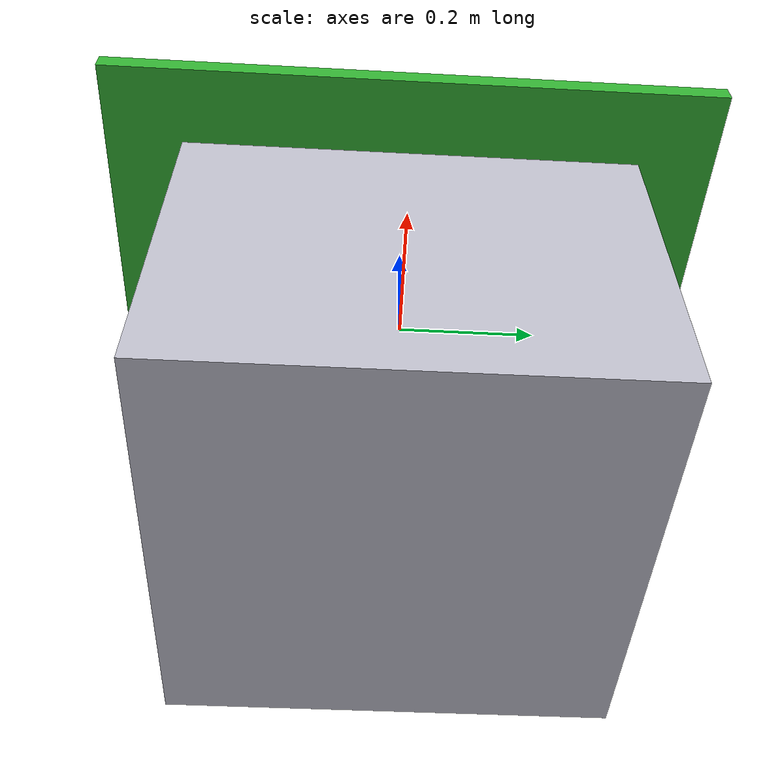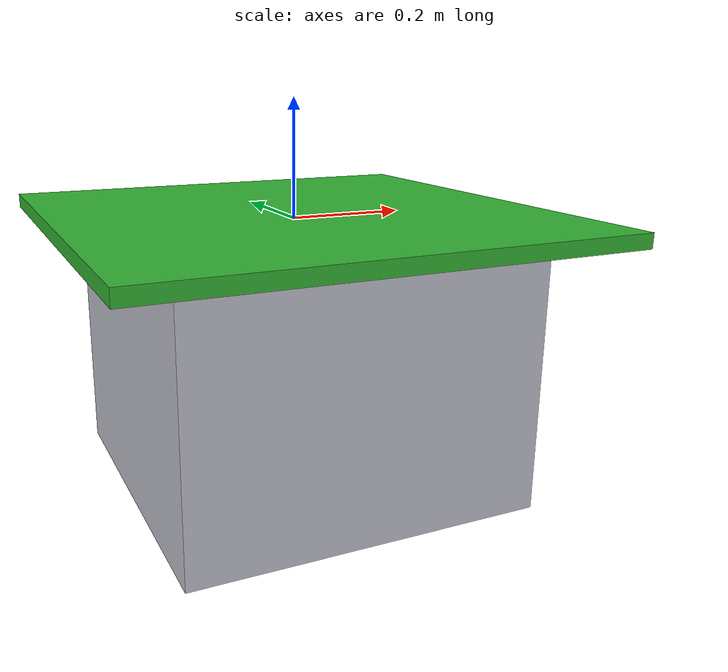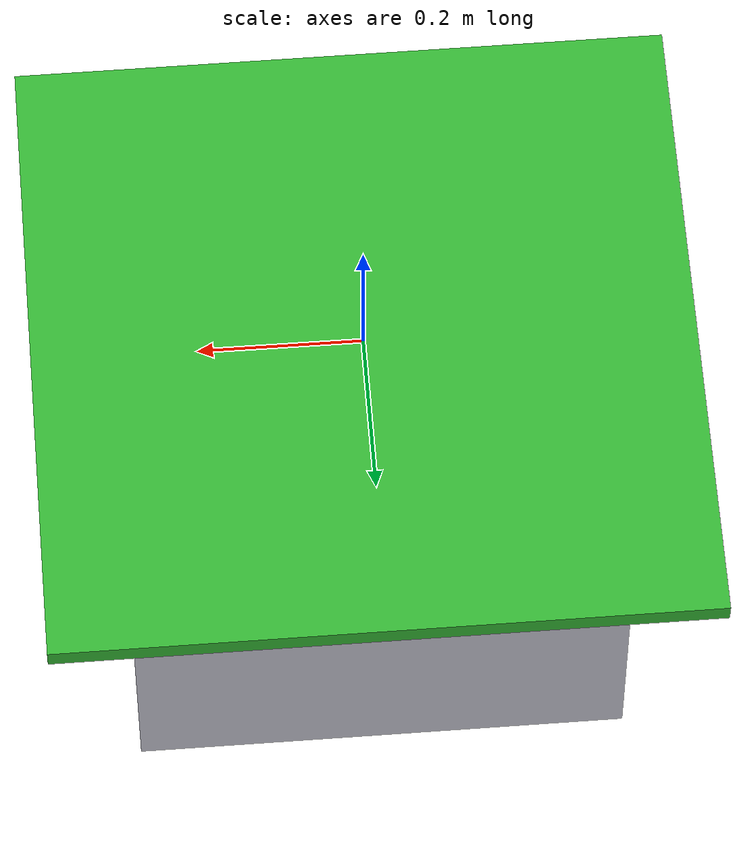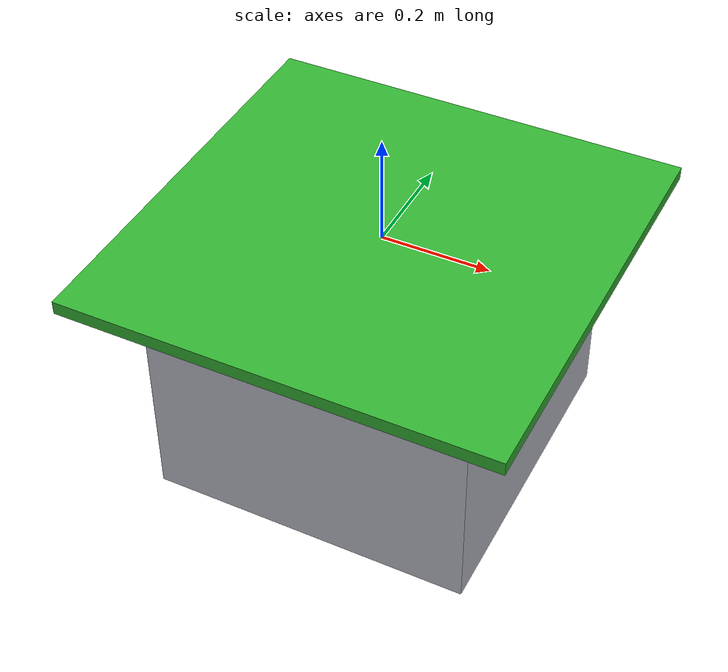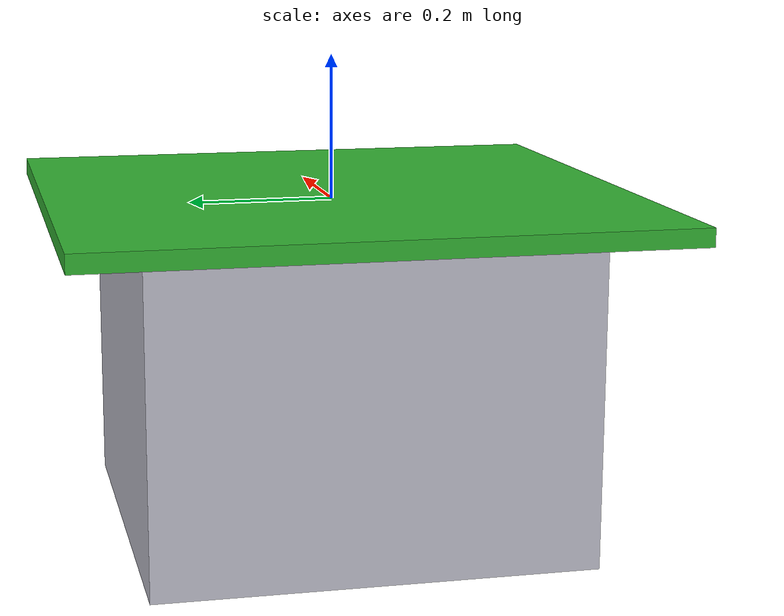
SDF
<?xml version="1.6"?>
<sdf version="1.7">
  <model name="grid_board">

    <!--
      Single-link board + tabletop + cabinet.
      No internal joints → no possible loops.
    -->
    <link name="board">

      <inertial>
        <mass>8.0</mass>
        <inertia>
          <ixx>0.03</ixx><iyy>0.03</iyy><izz>0.03</izz>
          <ixy>0</ixy><ixz>0</ixz><iyz>0</iyz>
        </inertia>
      </inertial>

      <!-- Top plate (where holes and moles sit) -->
      <collision name="top_collision">
        <geometry>
          <box>
            <size>0.8 0.8 0.025</size>
          </box>
        </geometry>
      </collision>

      <visual name="top_visual">
        <geometry>
          <box>
            <size>0.8 0.8 0.025</size>
          </box>
        </geometry>
        <material>
          <ambient>0.1 0.4 0.1 1</ambient>   <!-- darker green -->
          <diffuse>0.2 0.7 0.2 1</diffuse>   <!-- bright green -->
        </material>
      </visual>

      <!-- Cabinet body beneath the tabletop -->
      <collision name="cabinet_collision">
        <geometry>
          <box>
            <size>0.6 0.6 0.45</size>
          </box>
        </geometry>
        <!-- Offset cabinet downward so its top meets the tabletop -->
        <pose>0 0 -0.2375 0 0 0</pose>
      </collision>

      <visual name="cabinet_visual">
        <geometry>
          <box>
            <size>0.6 0.6 0.45</size>
          </box>
        </geometry>
        <material>
          <ambient>0.6 0.6 0.65 1</ambient>
          <diffuse>0.75 0.75 0.8 1</diffuse>
        </material>
        <pose>0 0 -0.2375 0 0 0</pose>
      </visual>

    </link>

    <static>false</static>
  </model>
</sdf>
